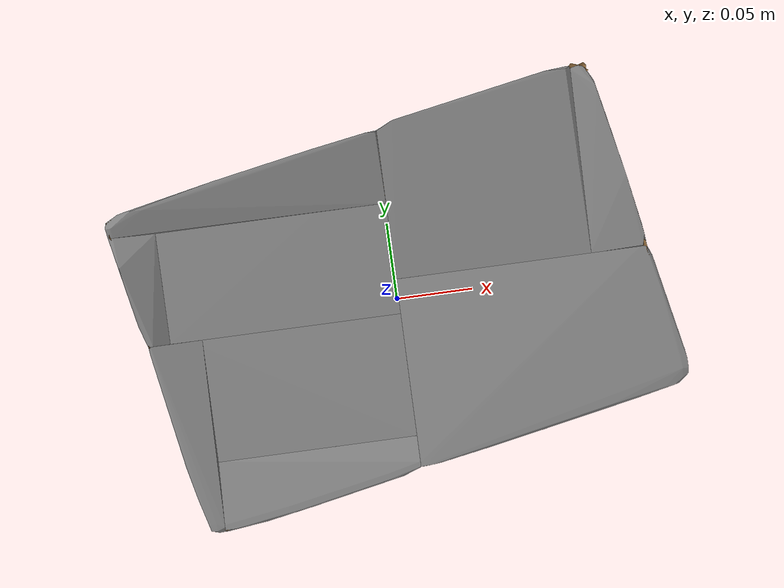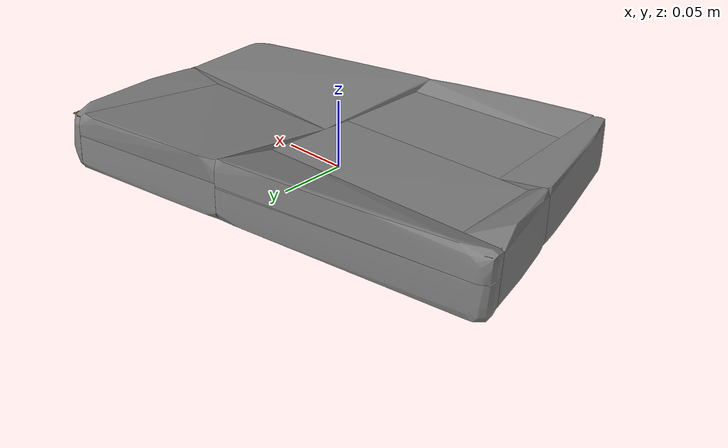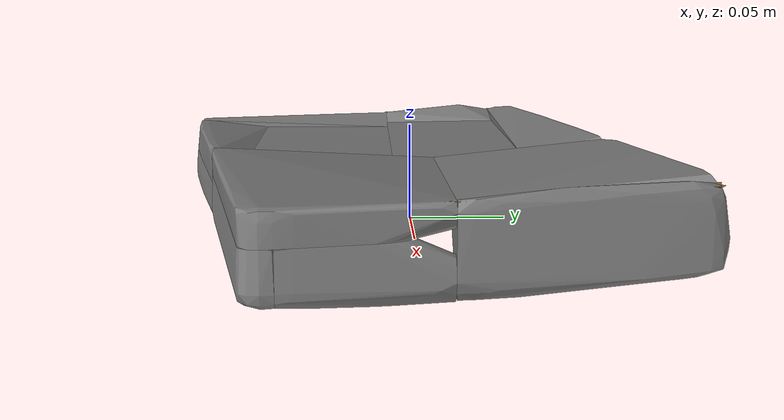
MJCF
<mujoco model="wooden_tray">
  <asset>
    <material name="wooden_tray_mat" rgba="0.55 0.4 0.22 1" specular="0.3" shininess="0.1"/>
    <mesh name="wooden_tray_vis" file="wooden_tray_libero.obj" scale="1 1 1"/>
    <mesh name="wooden_tray_col_0" file="wooden_tray_col_0.obj" scale="1 1 1"/>
    <mesh name="wooden_tray_col_1" file="wooden_tray_col_1.obj" scale="1 1 1"/>
    <mesh name="wooden_tray_col_2" file="wooden_tray_col_2.obj" scale="1 1 1"/>
    <mesh name="wooden_tray_col_3" file="wooden_tray_col_3.obj" scale="1 1 1"/>
    <mesh name="wooden_tray_col_4" file="wooden_tray_col_4.obj" scale="1 1 1"/>
    <mesh name="wooden_tray_col_5" file="wooden_tray_col_5.obj" scale="1 1 1"/>
    <mesh name="wooden_tray_col_6" file="wooden_tray_col_6.obj" scale="1 1 1"/>
    <mesh name="wooden_tray_col_7" file="wooden_tray_col_7.obj" scale="1 1 1"/>
    <mesh name="wooden_tray_col_8" file="wooden_tray_col_8.obj" scale="1 1 1"/>
    <mesh name="wooden_tray_col_9" file="wooden_tray_col_9.obj" scale="1 1 1"/>
    <mesh name="wooden_tray_col_10" file="wooden_tray_col_10.obj" scale="1 1 1"/>
    <mesh name="wooden_tray_col_11" file="wooden_tray_col_11.obj" scale="1 1 1"/>
    <mesh name="wooden_tray_col_12" file="wooden_tray_col_12.obj" scale="1 1 1"/>
    <mesh name="wooden_tray_col_13" file="wooden_tray_col_13.obj" scale="1 1 1"/>
  </asset>
  <worldbody>
    <body>
      <body name="object">
        <geom type="mesh" mesh="wooden_tray_vis" material="wooden_tray_mat" group="1" contype="0" conaffinity="0"/>
        <geom type="mesh" mesh="wooden_tray_col_0" group="0" density="100" friction="0.95 0.3 0.1" solimp="0.998 0.998 0.001" solref="0.001 1"/>
        <geom type="mesh" mesh="wooden_tray_col_1" group="0" density="100" friction="0.95 0.3 0.1" solimp="0.998 0.998 0.001" solref="0.001 1"/>
        <geom type="mesh" mesh="wooden_tray_col_2" group="0" density="100" friction="0.95 0.3 0.1" solimp="0.998 0.998 0.001" solref="0.001 1"/>
        <geom type="mesh" mesh="wooden_tray_col_3" group="0" density="100" friction="0.95 0.3 0.1" solimp="0.998 0.998 0.001" solref="0.001 1"/>
        <geom type="mesh" mesh="wooden_tray_col_4" group="0" density="100" friction="0.95 0.3 0.1" solimp="0.998 0.998 0.001" solref="0.001 1"/>
        <geom type="mesh" mesh="wooden_tray_col_5" group="0" density="100" friction="0.95 0.3 0.1" solimp="0.998 0.998 0.001" solref="0.001 1"/>
        <geom type="mesh" mesh="wooden_tray_col_6" group="0" density="100" friction="0.95 0.3 0.1" solimp="0.998 0.998 0.001" solref="0.001 1"/>
        <geom type="mesh" mesh="wooden_tray_col_7" group="0" density="100" friction="0.95 0.3 0.1" solimp="0.998 0.998 0.001" solref="0.001 1"/>
        <geom type="mesh" mesh="wooden_tray_col_8" group="0" density="100" friction="0.95 0.3 0.1" solimp="0.998 0.998 0.001" solref="0.001 1"/>
        <geom type="mesh" mesh="wooden_tray_col_9" group="0" density="100" friction="0.95 0.3 0.1" solimp="0.998 0.998 0.001" solref="0.001 1"/>
        <geom type="mesh" mesh="wooden_tray_col_10" group="0" density="100" friction="0.95 0.3 0.1" solimp="0.998 0.998 0.001" solref="0.001 1"/>
        <geom type="mesh" mesh="wooden_tray_col_11" group="0" density="100" friction="0.95 0.3 0.1" solimp="0.998 0.998 0.001" solref="0.001 1"/>
        <geom type="mesh" mesh="wooden_tray_col_12" group="0" density="100" friction="0.95 0.3 0.1" solimp="0.998 0.998 0.001" solref="0.001 1"/>
        <geom type="mesh" mesh="wooden_tray_col_13" group="0" density="100" friction="0.95 0.3 0.1" solimp="0.998 0.998 0.001" solref="0.001 1"/>
      </body>
      <site rgba="0 0 0 0" size="0.005" pos="0 0 0" name="bottom_site"/>
      <site rgba="0 0 0 0" size="0.005" pos="0 0 0.04060" name="top_site"/>
      <site rgba="0 0 0 0" size="0.005" pos="0.16887 0 0" name="horizontal_radius_site"/>
      <site type="box" rgba="0 0 0 0" pos="0 0 0.02233" size="0.10132 0.07683 0.01218" name="contain_region"/>
    </body>
  </worldbody>
</mujoco>
